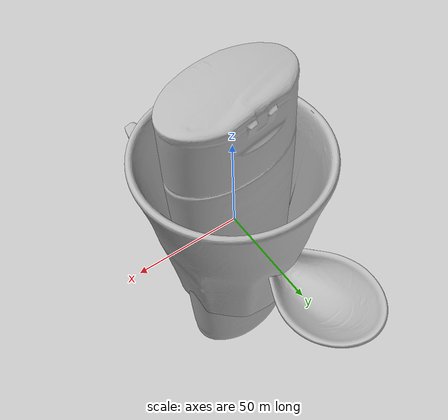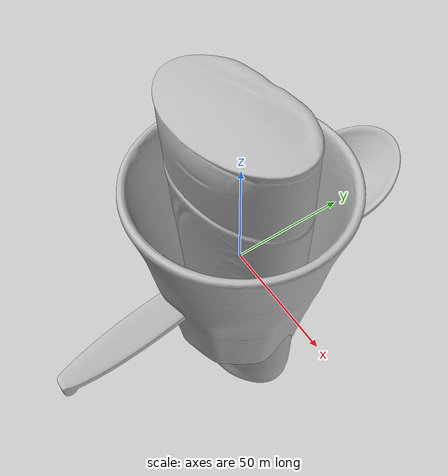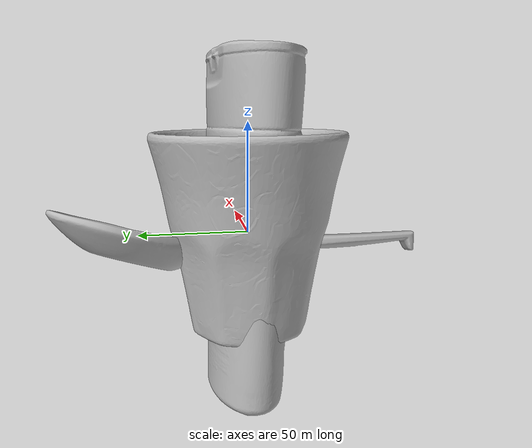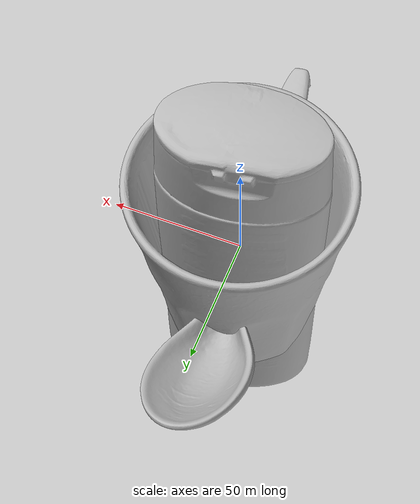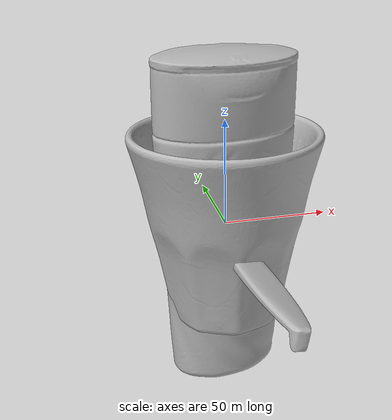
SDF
<sdf version="1.4">
 <world name="default">
  <light name="light1" type="point">
   <pose>0 0 1 0 0 0</pose>
   <diffuse>3 3 3 1</diffuse>
   <specular>3 3 3 1</specular>
  </light>
  <light name="light2" type="point">
   <pose>0 0.5 2 0 0 0</pose>
   <diffuse>1 1 1 1</diffuse>
   <specular>1 1 1 1</specular>
  </light>
  <light name="light3" type="point">
   <pose>0 0.5 2 0 0 0</pose>
   <diffuse>3 3 3 1</diffuse>
   <specular>3 3 3 1</specular>
  </light>
  <scene><ambient>0.7 0.7 0.7</ambient></scene>
  <model name="bottle1">
   <link name="link_bottle1">
    <collision name="default">
     <geometry>
      <mesh><uri>model://pure_zhen/collision_meshes/collision.obj</uri><scale>1.0 1.0 1.0</scale></mesh>
     </geometry>
     <surface>
      <friction><ode><mu>0.5</mu><mu2>0.5</mu2></ode></friction>
      <contact><ode><max_vel>0</max_vel><min_depth>0.0001</min_depth><kp>1e8</kp></ode></contact>
     </surface>
    </collision>
    <visual name="default">
     <geometry>
      <mesh><uri>model://pure_zhen/visual_meshes/visual.dae</uri><scale>1.0 1.0 1.0</scale></mesh>
     </geometry>
    </visual>
    <inertial>
     <mass>0.21128538250923157</mass>
     <pose>-8.582300506532192e-05 0.0002452346670906991 -0.0015797390369698405 -0.027642443229877835 0.005619248866174896 0.3057200614584077</pose>
     <inertia>
      <ixx>0.00063332287</ixx>
      <iyy>0.00063348823</iyy>
      <izz>6.6904315e-05</izz>
      <ixy>0</ixy>
      <ixz>0</ixz>
      <iyz>0</iyz>
     </inertia>
    </inertial>
   </link>
   <pose>0.21965257823467255 0.15563763678073883 0.09196119755506516 0.017111332787302872 -0.0006506237729447619 -1.3800499823629975</pose>
  </model>
  <model name="bottle2">
   <link name="link_bottle2">
    <collision name="default">
     <geometry>
      <mesh><uri>model://conditioner/collision_meshes/collision.obj</uri><scale>1.0 1.0 1.0</scale></mesh>
     </geometry>
     <surface>
      <friction><ode><mu>0.5</mu><mu2>0.5</mu2></ode></friction>
      <contact><ode><max_vel>0</max_vel><min_depth>0.0001</min_depth><kp>1e8</kp></ode></contact>
     </surface>
    </collision>
    <visual name="default">
     <geometry>
      <mesh><uri>model://conditioner/visual_meshes/visual.dae</uri><scale>1.0 1.0 1.0</scale></mesh>
     </geometry>
    </visual>
    <inertial>
     <mass>0.3611464500427246</mass>
     <pose>-0.00055994390277192 -0.0001729748910292983 0.004359682556241751 -0.005038374424784669 0.01530604350153207 0.015072341368129788</pose>
     <inertia>
      <ixx>0.00078562286</ixx>
      <iyy>0.0008415716</iyy>
      <izz>0.00012113213</izz>
      <ixy>0</ixy>
      <ixz>0</ixz>
      <iyz>0</iyz>
     </inertia>
    </inertial>
   </link>
   <pose>0.16443443298339844 0.1347227692604065 0.08122974634170532 0.03689298924835913 -0.015660449452901692 0.13255755396154298</pose>
  </model>
  <model name="silverware1">
   <link name="link_silverware1">
    <collision name="default">
     <geometry>
      <mesh><uri>model://doraemon_spoon/collision_meshes/collision.obj</uri><scale>1.0 1.0 1.0</scale></mesh>
     </geometry>
     <surface>
      <friction><ode><mu>0.5</mu><mu2>0.5</mu2></ode></friction>
      <contact><ode><max_vel>0</max_vel><min_depth>0.0001</min_depth><kp>1e8</kp></ode></contact>
     </surface>
    </collision>
    <visual name="default">
     <geometry>
      <mesh><uri>model://doraemon_spoon/visual_meshes/visual.dae</uri><scale>1.0 1.0 1.0</scale></mesh>
     </geometry>
    </visual>
    <inertial>
     <mass>0.02099660225212574</mass>
     <pose>-0.02216508239507675 -0.0006374581134878099 -0.003332545980811119 -0.009147162014623967 0.07380421234862718 -0.01412382746948542</pose>
     <inertia>
      <ixx>1.6446534e-06</ixx>
      <iyy>4.671061e-05</iyy>
      <izz>4.7504738e-05</izz>
      <ixy>0</ixy>
      <ixz>0</ixz>
      <iyz>0</iyz>
     </inertia>
    </inertial>
   </link>
   <pose>0.29045480489730835 0.31489044427871704 0.014608870260417461 -0.20527619952019924 -0.005046778874493191 -1.4418091222613267</pose>
  </model>
  <model name="stationery1">
   <link name="link_stationery1">
    <collision name="default">
     <geometry>
      <mesh><uri>model://correction_fuid/collision_meshes/collision.obj</uri><scale>1.0 1.0 1.0</scale></mesh>
     </geometry>
     <surface>
      <friction><ode><mu>0.5</mu><mu2>0.5</mu2></ode></friction>
      <contact><ode><max_vel>0</max_vel><min_depth>0.0001</min_depth><kp>1e8</kp></ode></contact>
     </surface>
    </collision>
    <visual name="default">
     <geometry>
      <mesh><uri>model://correction_fuid/visual_meshes/visual.dae</uri><scale>1.0 1.0 1.0</scale></mesh>
     </geometry>
    </visual>
    <inertial>
     <mass>0.046645622700452805</mass>
     <pose>-0.00012557735317386687 -0.0009722909890115261 -0.001618212671019137 -0.010846607840907904 0.019488357502694276 -0.015992455488392</pose>
     <inertia>
      <ixx>4.5177083e-05</ixx>
      <iyy>2.7341744e-06</iyy>
      <izz>4.635291e-05</izz>
      <ixy>0</ixy>
      <ixz>0</ixz>
      <iyz>0</iyz>
     </inertia>
    </inertial>
   </link>
   <pose>0.26238083839416504 0.24801822006702423 0.009632829576730728 -0.0017271470271897516 -0.05616755102931796 2.9932955614011023</pose>
  </model>
  <model name="bowl1">
   <link name="link_bowl1">
    <collision name="default">
     <geometry>
      <mesh><uri>model://doraemon_bowl/collision_meshes/collision.obj</uri><scale>1.0 1.0 1.0</scale></mesh>
     </geometry>
     <surface>
      <friction><ode><mu>0.5</mu><mu2>0.5</mu2></ode></friction>
      <contact><ode><max_vel>0</max_vel><min_depth>0.0001</min_depth><kp>1e8</kp></ode></contact>
     </surface>
    </collision>
    <visual name="default">
     <geometry>
      <mesh><uri>model://doraemon_bowl/visual_meshes/visual.dae</uri><scale>1.0 1.0 1.0</scale></mesh>
     </geometry>
    </visual>
    <inertial>
     <mass>0.11811670660972595</mass>
     <pose>-0.014629551209509373 0.0004857121384702623 -0.0020864885300397873 -0.00509396228069995 -0.10568398533611668 -0.02642645986873745</pose>
     <inertia>
      <ixx>0.00016378764</ixx>
      <iyy>0.00021554313</iyy>
      <izz>0.00031711452</izz>
      <ixy>0</ixy>
      <ixz>0</ixz>
      <iyz>0</iyz>
     </inertia>
    </inertial>
   </link>
   <pose>0.23301896452903748 -0.137373149394989 0.025905491784214973 0.0085934827484263 0.0063436227185551634 1.7066339100011314</pose>
  </model>
  <model name="cup1">
   <link name="link_cup1">
    <collision name="default">
     <geometry>
      <mesh><uri>model://hello_kitty_cup/collision_meshes/collision.obj</uri><scale>1.0 1.0 1.0</scale></mesh>
     </geometry>
     <surface>
      <friction><ode><mu>0.5</mu><mu2>0.5</mu2></ode></friction>
      <contact><ode><max_vel>0</max_vel><min_depth>0.0001</min_depth><kp>1e8</kp></ode></contact>
     </surface>
    </collision>
    <visual name="default">
     <geometry>
      <mesh><uri>model://hello_kitty_cup/visual_meshes/visual.dae</uri><scale>1.0 1.0 1.0</scale></mesh>
     </geometry>
    </visual>
    <inertial>
     <mass>0.06522195786237717</mass>
     <pose>0.00027251147548668087 0.0002795039035845548 0.003044978016987443 0.05779148941225366 0.007964866585370347 -0.020452001862605422</pose>
     <inertia>
      <ixx>8.981858e-05</ixx>
      <iyy>9.081978e-05</iyy>
      <izz>7.573251e-05</izz>
      <ixy>0</ixy>
      <ixz>0</ixz>
      <iyz>0</iyz>
     </inertia>
    </inertial>
   </link>
   <pose>-0.05608484894037247 0.14958664774894714 0.046310458332300186 -0.0018705852740179163 0.0035645845302871705 -2.0568106955807277</pose>
  </model>
  <model name="plate1">
   <link name="link_plate1">
    <collision name="default">
     <geometry>
      <mesh><uri>model://hello_kitty_plate/collision_meshes/collision.obj</uri><scale>1.0 1.0 1.0</scale></mesh>
     </geometry>
     <surface>
      <friction><ode><mu>0.5</mu><mu2>0.5</mu2></ode></friction>
      <contact><ode><max_vel>0</max_vel><min_depth>0.0001</min_depth><kp>1e8</kp></ode></contact>
     </surface>
    </collision>
    <visual name="default">
     <geometry>
      <mesh><uri>model://hello_kitty_plate/visual_meshes/visual.dae</uri><scale>1.0 1.0 1.0</scale></mesh>
     </geometry>
    </visual>
    <inertial>
     <mass>0.08260300010442734</mass>
     <pose>0.0073142931796610355 0.0002893725468311459 -0.0027947169728577137 -0.00010432002488368626 -0.007054440417891238 -0.014449022362072891</pose>
     <inertia>
      <ixx>0.0001592833</ixx>
      <iyy>0.00030061565</iyy>
      <izz>0.0004564546</izz>
      <ixy>0</ixy>
      <ixz>0</ixz>
      <iyz>0</iyz>
     </inertia>
    </inertial>
   </link>
   <pose>0.11712323129177094 -0.2937629818916321 0.008290788158774376 0.0004444257364872311 0.004186602818163477 -2.302009789457955</pose>
  </model>
  <model name="box4">
   <link name="link_box4">
    <collision name="default">
     <geometry>
      <mesh><uri>model://wooden_puzzle1/collision_meshes/collision.obj</uri><scale>1.0 1.0 1.0</scale></mesh>
     </geometry>
     <surface>
      <friction><ode><mu>0.5</mu><mu2>0.5</mu2></ode></friction>
      <contact><ode><max_vel>0</max_vel><min_depth>0.0001</min_depth><kp>1e8</kp></ode></contact>
     </surface>
    </collision>
    <visual name="default">
     <geometry>
      <mesh><uri>model://wooden_puzzle1/visual_meshes/visual.dae</uri><scale>1.0 1.0 1.0</scale></mesh>
     </geometry>
    </visual>
    <inertial>
     <mass>0.034562814980745316</mass>
     <pose>-0.0001735068071866408 7.97226166469045e-05 -9.191555000143126e-05 -0.07784459827727222 -0.2636103773563706 -0.5528705263726328</pose>
     <inertia>
      <ixx>6.5210584e-06</ixx>
      <iyy>6.395525e-06</iyy>
      <izz>6.471823e-06</izz>
      <ixy>0</ixy>
      <ixz>0</ixz>
      <iyz>0</iyz>
     </inertia>
    </inertial>
   </link>
   <pose>-0.055736739188432693 0.15116968750953674 0.02149059996008873 0.0031984209266271743 -0.012713274823095026 2.809401328280807</pose>
  </model>
  <physics type="ode">
   <max_contacts>50</max_contacts>
   <ode>
    <solver><type>quick</type><iters>75</iters></solver>
    <constraints>
     <contact_max_correcting_vel>0</contact_max_correcting_vel>
     <contact_surface_layer>0</contact_surface_layer>
    </constraints>
   </ode>
  </physics>
 </world>
</sdf>
